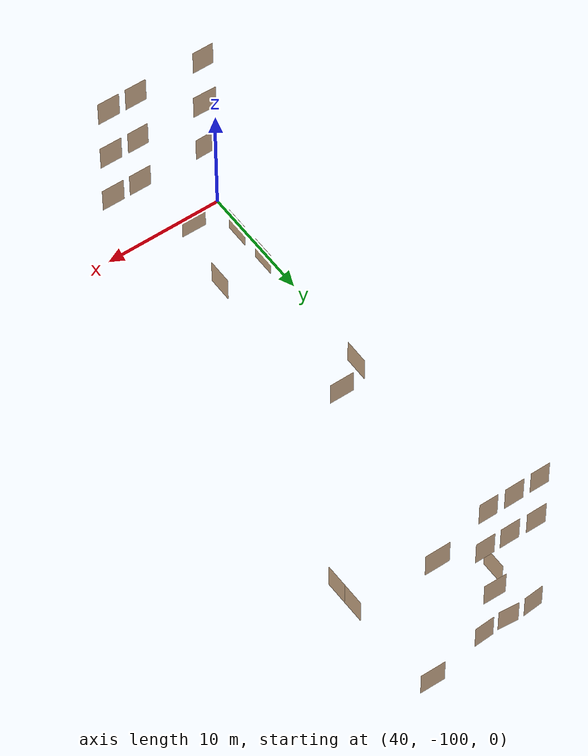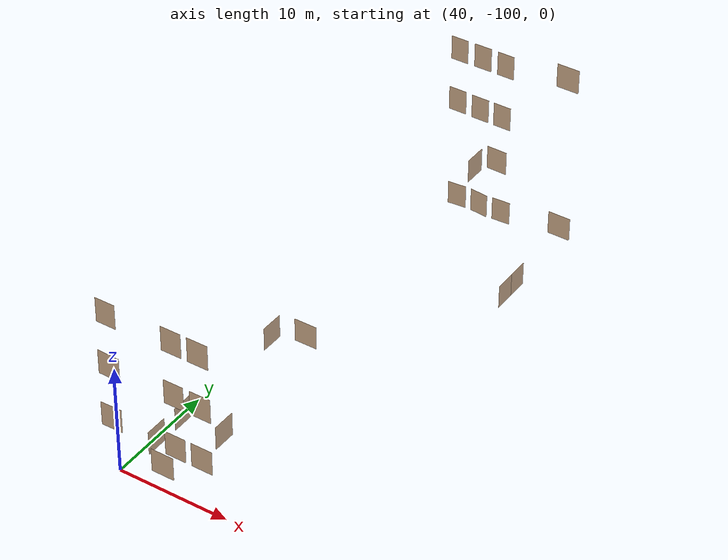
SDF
<sdf version="1.7">
 <world name="sim_world">
  <model name="puerta25">
   <pose>53.52785036692322 -64.84820118131377 0.0 0 0 -1.5655381820930956</pose>
   <link name="right">
    <pose>0.9582287468332203 0 1.11 0 0 0</pose>
    <visual name="right_visual">
     <geometry><box><size>1.9064574936664407 0.03 2.2</size></box></geometry>
     <material>
      <ambient>0.5 0.25 0 0.6</ambient>
      <diffuse>0.5 0.25 0 0.6</diffuse>
      <pbr><metal><metalness>0.0</metalness></metal></pbr>
     </material>
    </visual>
    <collision name="right_collision">
     <geometry><box><size>1.9064574936664407 0.03 2.2</size></box></geometry>
     <surface><contact><collide_bitmask>0x02</collide_bitmask></contact></surface>
    </collision>
    <inertial>
     <mass>50.0</mass>
     <inertia><ixx>20.17041666666667</ixx><iyy>35.31075072982053</iyy><izz>15.147834063153864</izz></inertia>
    </inertial>
   </link>
   <joint name="right_joint" type="revolute">
    <parent>world</parent>
    <child>right</child>
    <axis><xyz>0 0 -1</xyz><limit><lower>0</lower><upper>1.57</upper></limit></axis>
    <pose>0.9582287468332203 0 0 0 0 0</pose>
   </joint>
   <link name="left">
    <pose>-0.9582287468332203 0 1.11 0 0 0</pose>
    <visual name="left_visual">
     <geometry><box><size>1.9064574936664407 0.03 2.2</size></box></geometry>
     <material>
      <ambient>0.5 0.25 0 0.6</ambient>
      <diffuse>0.5 0.25 0 0.6</diffuse>
      <pbr><metal><metalness>0.0</metalness></metal></pbr>
     </material>
    </visual>
    <collision name="left_collision">
     <geometry><box><size>1.9064574936664407 0.03 2.2</size></box></geometry>
     <surface><contact><collide_bitmask>0x02</collide_bitmask></contact></surface>
    </collision>
    <inertial>
     <mass>50.0</mass>
     <inertia><ixx>20.17041666666667</ixx><iyy>35.31075072982053</iyy><izz>15.147834063153864</izz></inertia>
    </inertial>
   </link>
   <joint name="left_joint" type="revolute">
    <parent>world</parent>
    <child>left</child>
    <axis><xyz>0 0 -1</xyz><limit><lower>-1.57</lower><upper>0</upper></limit></axis>
    <pose>-0.9582287468332203 0 0 0 0 0</pose>
   </joint>
   <plugin name="register_component" filename="libregister_component.so">
    <component name="Door">
     <v_max_door>0.5</v_max_door>
     <a_max_door>0.3</a_max_door>
     <a_nom_door>0.15</a_nom_door>
     <dx_min_door>0.01</dx_min_door>
     <f_max_door>500.0</f_max_door>
     <ros_interface>true</ros_interface>
     <door name="puerta25" type="DoubleSwingDoor" left_joint_name="left_joint" right_joint_name="right_joint"/>
    </component>
   </plugin>
  </model>
  <model name="puerta46">
   <pose>52.62060139609808 -55.57334884553428 0.0 0 0 -0.007364241070211859</pose>
   <link name="right">
    <pose>0 0 1.11 0 0 0</pose>
    <visual name="right_visual">
     <geometry><box><size>2.0850988724225146 0.03 2.2</size></box></geometry>
     <material>
      <ambient>0.5 0.25 0 0.6</ambient>
      <diffuse>0.5 0.25 0 0.6</diffuse>
      <pbr><metal><metalness>0.0</metalness></metal></pbr>
     </material>
    </visual>
    <collision name="right_collision">
     <geometry><box><size>2.0850988724225146 0.03 2.2</size></box></geometry>
     <surface><contact><collide_bitmask>0x02</collide_bitmask></contact></surface>
    </collision>
    <inertial>
     <mass>50.0</mass>
     <inertia><ixx>20.17041666666667</ixx><iyy>38.28182211574018</iyy><izz>18.118905449073505</izz></inertia>
    </inertial>
   </link>
   <joint name="right_joint" type="revolute">
    <parent>world</parent>
    <child>right</child>
    <axis><xyz>0 0 1</xyz><limit><lower>0</lower><upper>1.57</upper></limit></axis>
    <pose>1.0475494362112572 0 0 0 0 0</pose>
   </joint>
   <plugin name="register_component" filename="libregister_component.so">
    <component name="Door">
     <v_max_door>0.5</v_max_door>
     <a_max_door>0.3</a_max_door>
     <a_nom_door>0.15</a_nom_door>
     <dx_min_door>0.01</dx_min_door>
     <f_max_door>500.0</f_max_door>
     <ros_interface>true</ros_interface>
     <door name="puerta46" type="SwingDoor" left_joint_name="empty_joint" right_joint_name="right_joint"/>
    </component>
   </plugin>
  </model>
  <model name="puerta47">
   <pose>47.40019688562735 -56.50902094147127 0.0 0 0 0.05648651307854879</pose>
   <link name="right">
    <pose>0 0 1.11 0 0 0</pose>
    <visual name="right_visual">
     <geometry><box><size>1.6721889847579603 0.03 2.2</size></box></geometry>
     <material>
      <ambient>0.5 0.25 0 0.6</ambient>
      <diffuse>0.5 0.25 0 0.6</diffuse>
      <pbr><metal><metalness>0.0</metalness></metal></pbr>
     </material>
    </visual>
    <collision name="right_collision">
     <geometry><box><size>1.6721889847579603 0.03 2.2</size></box></geometry>
     <surface><contact><collide_bitmask>0x02</collide_bitmask></contact></surface>
    </collision>
    <inertial>
     <mass>50.0</mass>
     <inertia><ixx>20.17041666666667</ixx><iyy>31.817566669774415</iyy><izz>11.654650003107742</izz></inertia>
    </inertial>
   </link>
   <joint name="right_joint" type="revolute">
    <parent>world</parent>
    <child>right</child>
    <axis><xyz>0 0 -1</xyz><limit><lower>0</lower><upper>1.57</upper></limit></axis>
    <pose>0.8410944923789802 0 0 0 0 0</pose>
   </joint>
   <plugin name="register_component" filename="libregister_component.so">
    <component name="Door">
     <v_max_door>0.5</v_max_door>
     <a_max_door>0.3</a_max_door>
     <a_nom_door>0.15</a_nom_door>
     <dx_min_door>0.01</dx_min_door>
     <f_max_door>500.0</f_max_door>
     <ros_interface>true</ros_interface>
     <door name="puerta47" type="SwingDoor" left_joint_name="empty_joint" right_joint_name="right_joint"/>
    </component>
   </plugin>
  </model>
  <model name="puerta48">
   <pose>45.219545373187756 -56.56219795954895 0.0 0 0 -0.09481233352136133</pose>
   <link name="right">
    <pose>0 0 1.11 0 0 0</pose>
    <visual name="right_visual">
     <geometry><box><size>1.6945952115587586 0.03 2.2</size></box></geometry>
     <material>
      <ambient>0.5 0.25 0 0.6</ambient>
      <diffuse>0.5 0.25 0 0.6</diffuse>
      <pbr><metal><metalness>0.0</metalness></metal></pbr>
     </material>
    </visual>
    <collision name="right_collision">
     <geometry><box><size>1.6945952115587586 0.03 2.2</size></box></geometry>
     <surface><contact><collide_bitmask>0x02</collide_bitmask></contact></surface>
    </collision>
    <inertial>
     <mass>50.0</mass>
     <inertia><ixx>20.17041666666667</ixx><iyy>32.13188721265781</iyy><izz>11.96897054599114</izz></inertia>
    </inertial>
   </link>
   <joint name="right_joint" type="revolute">
    <parent>world</parent>
    <child>right</child>
    <axis><xyz>0 0 -1</xyz><limit><lower>0</lower><upper>1.57</upper></limit></axis>
    <pose>0.8522976057793793 0 0 0 0 0</pose>
   </joint>
   <plugin name="register_component" filename="libregister_component.so">
    <component name="Door">
     <v_max_door>0.5</v_max_door>
     <a_max_door>0.3</a_max_door>
     <a_nom_door>0.15</a_nom_door>
     <dx_min_door>0.01</dx_min_door>
     <f_max_door>500.0</f_max_door>
     <ros_interface>true</ros_interface>
     <door name="puerta48" type="SwingDoor" left_joint_name="empty_joint" right_joint_name="right_joint"/>
    </component>
   </plugin>
  </model>
  <model name="puerta49">
   <pose>43.012189010202256 -56.57220332915697 0.0 0 0 0.08355014081584271</pose>
   <link name="right">
    <pose>0 0 1.11 0 0 0</pose>
    <visual name="right_visual">
     <geometry><box><size>1.683934697909115 0.03 2.2</size></box></geometry>
     <material>
      <ambient>0.5 0.25 0 0.6</ambient>
      <diffuse>0.5 0.25 0 0.6</diffuse>
      <pbr><metal><metalness>0.0</metalness></metal></pbr>
     </material>
    </visual>
    <collision name="right_collision">
     <geometry><box><size>1.683934697909115 0.03 2.2</size></box></geometry>
     <surface><contact><collide_bitmask>0x02</collide_bitmask></contact></surface>
    </collision>
    <inertial>
     <mass>50.0</mass>
     <inertia><ixx>20.17041666666667</ixx><iyy>31.981816945092767</iyy><izz>11.818900278426096</izz></inertia>
    </inertial>
   </link>
   <joint name="right_joint" type="revolute">
    <parent>world</parent>
    <child>right</child>
    <axis><xyz>0 0 -1</xyz><limit><lower>0</lower><upper>1.57</upper></limit></axis>
    <pose>0.8469673489545575 0 0 0 0 0</pose>
   </joint>
   <plugin name="register_component" filename="libregister_component.so">
    <component name="Door">
     <v_max_door>0.5</v_max_door>
     <a_max_door>0.3</a_max_door>
     <a_nom_door>0.15</a_nom_door>
     <dx_min_door>0.01</dx_min_door>
     <f_max_door>500.0</f_max_door>
     <ros_interface>true</ros_interface>
     <door name="puerta49" type="SwingDoor" left_joint_name="empty_joint" right_joint_name="right_joint"/>
    </component>
   </plugin>
  </model>
  <model name="puerta52">
   <pose>43.07785931626991 -79.60778593162699 0.0 0 0 3.1404094859948395</pose>
   <link name="right">
    <pose>0 0 1.11 0 0 0</pose>
    <visual name="right_visual">
     <geometry><box><size>2.0776334640875898 0.03 2.2</size></box></geometry>
     <material>
      <ambient>0.5 0.25 0 0.6</ambient>
      <diffuse>0.5 0.25 0 0.6</diffuse>
      <pbr><metal><metalness>0.0</metalness></metal></pbr>
     </material>
    </visual>
    <collision name="right_collision">
     <geometry><box><size>2.0776334640875898 0.03 2.2</size></box></geometry>
     <surface><contact><collide_bitmask>0x02</collide_bitmask></contact></surface>
    </collision>
    <inertial>
     <mass>50.0</mass>
     <inertia><ixx>20.17041666666667</ixx><iyy>38.152336712902496</iyy><izz>17.989420046235825</izz></inertia>
    </inertial>
   </link>
   <joint name="right_joint" type="revolute">
    <parent>world</parent>
    <child>right</child>
    <axis><xyz>0 0 1</xyz><limit><lower>0</lower><upper>1.57</upper></limit></axis>
    <pose>1.0438167320437948 0 0 0 0 0</pose>
   </joint>
   <plugin name="register_component" filename="libregister_component.so">
    <component name="Door">
     <v_max_door>0.5</v_max_door>
     <a_max_door>0.3</a_max_door>
     <a_nom_door>0.15</a_nom_door>
     <dx_min_door>0.01</dx_min_door>
     <f_max_door>500.0</f_max_door>
     <ros_interface>true</ros_interface>
     <door name="puerta52" type="SwingDoor" left_joint_name="empty_joint" right_joint_name="right_joint"/>
    </component>
   </plugin>
  </model>
  <model name="puerta53">
   <pose>40.75546805083229 -81.01752282083407 0.0 0 0 -1.5821649831274933</pose>
   <link name="right">
    <pose>0 0 1.11 0 0 0</pose>
    <visual name="right_visual">
     <geometry><box><size>2.1312158720166674 0.03 2.2</size></box></geometry>
     <material>
      <ambient>0.5 0.25 0 0.6</ambient>
      <diffuse>0.5 0.25 0 0.6</diffuse>
      <pbr><metal><metalness>0.0</metalness></metal></pbr>
     </material>
    </visual>
    <collision name="right_collision">
     <geometry><box><size>2.1312158720166674 0.03 2.2</size></box></geometry>
     <surface><contact><collide_bitmask>0x02</collide_bitmask></contact></surface>
    </collision>
    <inertial>
     <mass>50.0</mass>
     <inertia><ixx>20.17041666666667</ixx><iyy>39.092004554732355</iyy><izz>18.929087888065684</izz></inertia>
    </inertial>
   </link>
   <joint name="right_joint" type="revolute">
    <parent>world</parent>
    <child>right</child>
    <axis><xyz>0 0 1</xyz><limit><lower>0</lower><upper>1.57</upper></limit></axis>
    <pose>1.0706079360083336 0 0 0 0 0</pose>
   </joint>
   <plugin name="register_component" filename="libregister_component.so">
    <component name="Door">
     <v_max_door>0.5</v_max_door>
     <a_max_door>0.3</a_max_door>
     <a_nom_door>0.15</a_nom_door>
     <dx_min_door>0.01</dx_min_door>
     <f_max_door>500.0</f_max_door>
     <ros_interface>true</ros_interface>
     <door name="puerta53" type="SwingDoor" left_joint_name="empty_joint" right_joint_name="right_joint"/>
    </component>
   </plugin>
  </model>
  <model name="puerta54">
   <pose>40.715482369787004 -92.9995883300519 0.0 0 0 -1.5707963267948966</pose>
   <link name="right">
    <pose>0 0 1.11 0 0 0</pose>
    <visual name="right_visual">
     <geometry><box><size>1.9820887775192284 0.03 2.2</size></box></geometry>
     <material>
      <ambient>0.5 0.25 0 0.6</ambient>
      <diffuse>0.5 0.25 0 0.6</diffuse>
      <pbr><metal><metalness>0.0</metalness></metal></pbr>
     </material>
    </visual>
    <collision name="right_collision">
     <geometry><box><size>1.9820887775192284 0.03 2.2</size></box></geometry>
     <surface><contact><collide_bitmask>0x02</collide_bitmask></contact></surface>
    </collision>
    <inertial>
     <mass>50.0</mass>
     <inertia><ixx>20.17041666666667</ixx><iyy>36.53614967486529</iyy><izz>16.373233008198625</izz></inertia>
    </inertial>
   </link>
   <joint name="right_joint" type="revolute">
    <parent>world</parent>
    <child>right</child>
    <axis><xyz>0 0 1</xyz><limit><lower>0</lower><upper>1.57</upper></limit></axis>
    <pose>0.9960443887596142 0 0 0 0 0</pose>
   </joint>
   <plugin name="register_component" filename="libregister_component.so">
    <component name="Door">
     <v_max_door>0.5</v_max_door>
     <a_max_door>0.3</a_max_door>
     <a_nom_door>0.15</a_nom_door>
     <dx_min_door>0.01</dx_min_door>
     <f_max_door>500.0</f_max_door>
     <ros_interface>true</ros_interface>
     <door name="puerta54" type="SwingDoor" left_joint_name="empty_joint" right_joint_name="right_joint"/>
    </component>
   </plugin>
  </model>
  <model name="puerta55">
   <pose>44.68093789153392 -92.97095042061929 0.0 0 0 -1.5774400818094219</pose>
   <link name="right">
    <pose>0 0 1.11 0 0 0</pose>
    <visual name="right_visual">
     <geometry><box><size>2.1344897838593595 0.03 2.2</size></box></geometry>
     <material>
      <ambient>0.5 0.25 0 0.6</ambient>
      <diffuse>0.5 0.25 0 0.6</diffuse>
      <pbr><metal><metalness>0.0</metalness></metal></pbr>
     </material>
    </visual>
    <collision name="right_collision">
     <geometry><box><size>2.1344897838593595 0.03 2.2</size></box></geometry>
     <surface><contact><collide_bitmask>0x02</collide_bitmask></contact></surface>
    </collision>
    <inertial>
     <mass>50.0</mass>
     <inertia><ixx>20.17041666666667</ixx><iyy>39.15019432249991</iyy><izz>18.98727765583323</izz></inertia>
    </inertial>
   </link>
   <joint name="right_joint" type="revolute">
    <parent>world</parent>
    <child>right</child>
    <axis><xyz>0 0 -1</xyz><limit><lower>0</lower><upper>1.57</upper></limit></axis>
    <pose>1.0722448919296796 0 0 0 0 0</pose>
   </joint>
   <plugin name="register_component" filename="libregister_component.so">
    <component name="Door">
     <v_max_door>0.5</v_max_door>
     <a_max_door>0.3</a_max_door>
     <a_nom_door>0.15</a_nom_door>
     <dx_min_door>0.01</dx_min_door>
     <f_max_door>500.0</f_max_door>
     <ros_interface>true</ros_interface>
     <door name="puerta55" type="SwingDoor" left_joint_name="empty_joint" right_joint_name="right_joint"/>
    </component>
   </plugin>
  </model>
  <model name="puerta56">
   <pose>40.727474494361914 -96.3662788616431 0.0 0 0 1.5707963267948966</pose>
   <link name="right">
    <pose>0 0 1.11 0 0 0</pose>
    <visual name="right_visual">
     <geometry><box><size>2.031524968677294 0.03 2.2</size></box></geometry>
     <material>
      <ambient>0.5 0.25 0 0.6</ambient>
      <diffuse>0.5 0.25 0 0.6</diffuse>
      <pbr><metal><metalness>0.0</metalness></metal></pbr>
     </material>
    </visual>
    <collision name="right_collision">
     <geometry><box><size>2.031524968677294 0.03 2.2</size></box></geometry>
     <surface><contact><collide_bitmask>0x02</collide_bitmask></contact></surface>
    </collision>
    <inertial>
     <mass>50.0</mass>
     <inertia><ixx>20.17041666666667</ixx><iyy>37.36289040983034</iyy><izz>17.19997374316367</izz></inertia>
    </inertial>
   </link>
   <joint name="right_joint" type="revolute">
    <parent>world</parent>
    <child>right</child>
    <axis><xyz>0 0 -1</xyz><limit><lower>0</lower><upper>1.57</upper></limit></axis>
    <pose>1.020762484338647 0 0 0 0 0</pose>
   </joint>
   <plugin name="register_component" filename="libregister_component.so">
    <component name="Door">
     <v_max_door>0.5</v_max_door>
     <a_max_door>0.3</a_max_door>
     <a_nom_door>0.15</a_nom_door>
     <dx_min_door>0.01</dx_min_door>
     <f_max_door>500.0</f_max_door>
     <ros_interface>true</ros_interface>
     <door name="puerta56" type="SwingDoor" left_joint_name="empty_joint" right_joint_name="right_joint"/>
    </component>
   </plugin>
  </model>
  <model name="puerta57">
   <pose>43.063558260247 -98.71405047431537 0.0 0 0 3.1377158472483493</pose>
   <link name="right">
    <pose>0 0 1.11 0 0 0</pose>
    <visual name="right_visual">
     <geometry><box><size>2.0952959354385654 0.03 2.2</size></box></geometry>
     <material>
      <ambient>0.5 0.25 0 0.6</ambient>
      <diffuse>0.5 0.25 0 0.6</diffuse>
      <pbr><metal><metalness>0.0</metalness></metal></pbr>
     </material>
    </visual>
    <collision name="right_collision">
     <geometry><box><size>2.0952959354385654 0.03 2.2</size></box></geometry>
     <surface><contact><collide_bitmask>0x02</collide_bitmask></contact></surface>
    </collision>
    <inertial>
     <mass>50.0</mass>
     <inertia><ixx>20.17041666666667</ixx><iyy>38.4594377377724</iyy><izz>18.296521071105722</izz></inertia>
    </inertial>
   </link>
   <joint name="right_joint" type="revolute">
    <parent>world</parent>
    <child>right</child>
    <axis><xyz>0 0 -1</xyz><limit><lower>0</lower><upper>1.57</upper></limit></axis>
    <pose>1.0526479677192826 0 0 0 0 0</pose>
   </joint>
   <plugin name="register_component" filename="libregister_component.so">
    <component name="Door">
     <v_max_door>0.5</v_max_door>
     <a_max_door>0.3</a_max_door>
     <a_nom_door>0.15</a_nom_door>
     <dx_min_door>0.01</dx_min_door>
     <f_max_door>500.0</f_max_door>
     <ros_interface>true</ros_interface>
     <door name="puerta57" type="SwingDoor" left_joint_name="empty_joint" right_joint_name="right_joint"/>
    </component>
   </plugin>
  </model>
  <model name="puerta3158">
   <pose>46.75317372883407 -56.415233009408134 5.0 0 0 -0.016442522791668225</pose>
   <link name="right">
    <pose>0 0 1.11 0 0 0</pose>
    <visual name="right_visual">
     <geometry><box><size>1.8698343282020928 0.03 2.2</size></box></geometry>
     <material>
      <ambient>0.5 0.25 0 0.6</ambient>
      <diffuse>0.5 0.25 0 0.6</diffuse>
      <pbr><metal><metalness>0.0</metalness></metal></pbr>
     </material>
    </visual>
    <collision name="right_collision">
     <geometry><box><size>1.8698343282020928 0.03 2.2</size></box></geometry>
     <surface><contact><collide_bitmask>0x02</collide_bitmask></contact></surface>
    </collision>
    <inertial>
     <mass>50.0</mass>
     <inertia><ixx>20.17041666666667</ixx><iyy>34.73450172884572</iyy><izz>14.571585062179052</izz></inertia>
    </inertial>
   </link>
   <joint name="right_joint" type="revolute">
    <parent>world</parent>
    <child>right</child>
    <axis><xyz>0 0 -1</xyz><limit><lower>0</lower><upper>1.57</upper></limit></axis>
    <pose>0.9399171641010464 0 0 0 0 0</pose>
   </joint>
   <plugin name="register_component" filename="libregister_component.so">
    <component name="Door">
     <v_max_door>0.5</v_max_door>
     <a_max_door>0.3</a_max_door>
     <a_nom_door>0.15</a_nom_door>
     <dx_min_door>0.01</dx_min_door>
     <f_max_door>500.0</f_max_door>
     <ros_interface>true</ros_interface>
     <door name="puerta3158" type="SwingDoor" left_joint_name="empty_joint" right_joint_name="right_joint"/>
    </component>
   </plugin>
  </model>
  <model name="puerta3159">
   <pose>45.63348467686153 -58.08294049451392 5.0 0 0 -1.5707850723177155</pose>
   <link name="right">
    <pose>0 0 1.11 0 0 0</pose>
    <visual name="right_visual">
     <geometry><box><size>2.1005448932218327 0.03 2.2</size></box></geometry>
     <material>
      <ambient>0.5 0.25 0 0.6</ambient>
      <diffuse>0.5 0.25 0 0.6</diffuse>
      <pbr><metal><metalness>0.0</metalness></metal></pbr>
     </material>
    </visual>
    <collision name="right_collision">
     <geometry><box><size>2.1005448932218327 0.03 2.2</size></box></geometry>
     <surface><contact><collide_bitmask>0x02</collide_bitmask></contact></surface>
    </collision>
    <inertial>
     <mass>50.0</mass>
     <inertia><ixx>20.17041666666667</ixx><iyy>38.551203535168014</iyy><izz>18.388286868501336</izz></inertia>
    </inertial>
   </link>
   <joint name="right_joint" type="revolute">
    <parent>world</parent>
    <child>right</child>
    <axis><xyz>0 0 1</xyz><limit><lower>0</lower><upper>1.57</upper></limit></axis>
    <pose>1.0552724466109162 0 0 0 0 0</pose>
   </joint>
   <plugin name="register_component" filename="libregister_component.so">
    <component name="Door">
     <v_max_door>0.5</v_max_door>
     <a_max_door>0.3</a_max_door>
     <a_nom_door>0.15</a_nom_door>
     <dx_min_door>0.01</dx_min_door>
     <f_max_door>500.0</f_max_door>
     <ros_interface>true</ros_interface>
     <door name="puerta3159" type="SwingDoor" left_joint_name="empty_joint" right_joint_name="right_joint"/>
    </component>
   </plugin>
  </model>
  <model name="puerta3164">
   <pose>40.25053476153667 -100.94872343696868 5.0 0 0 0.020657232711416125</pose>
   <link name="right">
    <pose>0 0 1.11 0 0 0</pose>
    <visual name="right_visual">
     <geometry><box><size>1.8991258555410617 0.03 2.2</size></box></geometry>
     <material>
      <ambient>0.5 0.25 0 0.6</ambient>
      <diffuse>0.5 0.25 0 0.6</diffuse>
      <pbr><metal><metalness>0.0</metalness></metal></pbr>
     </material>
    </visual>
    <collision name="right_collision">
     <geometry><box><size>1.8991258555410617 0.03 2.2</size></box></geometry>
     <surface><contact><collide_bitmask>0x02</collide_bitmask></contact></surface>
    </collision>
    <inertial>
     <mass>50.0</mass>
     <inertia><ixx>20.17041666666667</ixx><iyy>35.19449589660238</iyy><izz>15.031579229935708</izz></inertia>
    </inertial>
   </link>
   <joint name="right_joint" type="revolute">
    <parent>world</parent>
    <child>right</child>
    <axis><xyz>0 0 1</xyz><limit><lower>0</lower><upper>1.57</upper></limit></axis>
    <pose>0.9545629277705309 0 0 0 0 0</pose>
   </joint>
   <plugin name="register_component" filename="libregister_component.so">
    <component name="Door">
     <v_max_door>0.5</v_max_door>
     <a_max_door>0.3</a_max_door>
     <a_nom_door>0.15</a_nom_door>
     <dx_min_door>0.01</dx_min_door>
     <f_max_door>500.0</f_max_door>
     <ros_interface>true</ros_interface>
     <door name="puerta3164" type="SwingDoor" left_joint_name="empty_joint" right_joint_name="right_joint"/>
    </component>
   </plugin>
  </model>
  <model name="puerta3165">
   <pose>46.24683741554928 -100.98443548326364 5.0 0 0 1.1254477172847506e-05</pose>
   <link name="right">
    <pose>0 0 1.11 0 0 0</pose>
    <visual name="right_visual">
     <geometry><box><size>1.8747705005770636 0.03 2.2</size></box></geometry>
     <material>
      <ambient>0.5 0.25 0 0.6</ambient>
      <diffuse>0.5 0.25 0 0.6</diffuse>
      <pbr><metal><metalness>0.0</metalness></metal></pbr>
     </material>
    </visual>
    <collision name="right_collision">
     <geometry><box><size>1.8747705005770636 0.03 2.2</size></box></geometry>
     <surface><contact><collide_bitmask>0x02</collide_bitmask></contact></surface>
    </collision>
    <inertial>
     <mass>50.0</mass>
     <inertia><ixx>20.17041666666667</ixx><iyy>34.81151845764156</iyy><izz>14.648601790974892</izz></inertia>
    </inertial>
   </link>
   <joint name="right_joint" type="revolute">
    <parent>world</parent>
    <child>right</child>
    <axis><xyz>0 0 1</xyz><limit><lower>0</lower><upper>1.57</upper></limit></axis>
    <pose>0.9423852502885318 0 0 0 0 0</pose>
   </joint>
   <plugin name="register_component" filename="libregister_component.so">
    <component name="Door">
     <v_max_door>0.5</v_max_door>
     <a_max_door>0.3</a_max_door>
     <a_nom_door>0.15</a_nom_door>
     <dx_min_door>0.01</dx_min_door>
     <f_max_door>500.0</f_max_door>
     <ros_interface>true</ros_interface>
     <door name="puerta3165" type="SwingDoor" left_joint_name="empty_joint" right_joint_name="right_joint"/>
    </component>
   </plugin>
  </model>
  <model name="puerta3166">
   <pose>48.66744175080785 -100.98440824062737 5.0 0 0 -3.141581399112612</pose>
   <link name="right">
    <pose>0 0 1.11 0 0 0</pose>
    <visual name="right_visual">
     <geometry><box><size>1.901511180980686 0.03 2.2</size></box></geometry>
     <material>
      <ambient>0.5 0.25 0 0.6</ambient>
      <diffuse>0.5 0.25 0 0.6</diffuse>
      <pbr><metal><metalness>0.0</metalness></metal></pbr>
     </material>
    </visual>
    <collision name="right_collision">
     <geometry><box><size>1.901511180980686 0.03 2.2</size></box></geometry>
     <surface><contact><collide_bitmask>0x02</collide_bitmask></contact></surface>
    </collision>
    <inertial>
     <mass>50.0</mass>
     <inertia><ixx>20.17041666666667</ixx><iyy>35.232269880810684</iyy><izz>15.069353214144014</izz></inertia>
    </inertial>
   </link>
   <joint name="right_joint" type="revolute">
    <parent>world</parent>
    <child>right</child>
    <axis><xyz>0 0 -1</xyz><limit><lower>0</lower><upper>1.57</upper></limit></axis>
    <pose>0.955755590490343 0 0 0 0 0</pose>
   </joint>
   <plugin name="register_component" filename="libregister_component.so">
    <component name="Door">
     <v_max_door>0.5</v_max_door>
     <a_max_door>0.3</a_max_door>
     <a_nom_door>0.15</a_nom_door>
     <dx_min_door>0.01</dx_min_door>
     <f_max_door>500.0</f_max_door>
     <ros_interface>true</ros_interface>
     <door name="puerta3166" type="SwingDoor" left_joint_name="empty_joint" right_joint_name="right_joint"/>
    </component>
   </plugin>
  </model>
  <model name="puerta5255">
   <pose>43.0228554374838 -56.89698671437752 10.0 0 0 -4.690877071458797e-06</pose>
   <link name="right">
    <pose>0 0 1.11 0 0 0</pose>
    <visual name="right_visual">
     <geometry><box><size>1.6507101948174436 0.03 2.2</size></box></geometry>
     <material>
      <ambient>0.5 0.25 0 0.6</ambient>
      <diffuse>0.5 0.25 0 0.6</diffuse>
      <pbr><metal><metalness>0.0</metalness></metal></pbr>
     </material>
    </visual>
    <collision name="right_collision">
     <geometry><box><size>1.6507101948174436 0.03 2.2</size></box></geometry>
     <surface><contact><collide_bitmask>0x02</collide_bitmask></contact></surface>
    </collision>
    <inertial>
     <mass>50.0</mass>
     <inertia><ixx>20.17041666666667</ixx><iyy>31.520183946976015</iyy><izz>11.357267280309346</izz></inertia>
    </inertial>
   </link>
   <joint name="right_joint" type="revolute">
    <parent>world</parent>
    <child>right</child>
    <axis><xyz>0 0 -1</xyz><limit><lower>0</lower><upper>1.57</upper></limit></axis>
    <pose>0.8303550974087218 0 0 0 0 0</pose>
   </joint>
   <plugin name="register_component" filename="libregister_component.so">
    <component name="Door">
     <v_max_door>0.5</v_max_door>
     <a_max_door>0.3</a_max_door>
     <a_nom_door>0.15</a_nom_door>
     <dx_min_door>0.01</dx_min_door>
     <f_max_door>500.0</f_max_door>
     <ros_interface>true</ros_interface>
     <door name="puerta5255" type="SwingDoor" left_joint_name="empty_joint" right_joint_name="right_joint"/>
    </component>
   </plugin>
  </model>
  <model name="puerta5256">
   <pose>45.272305416396534 -56.942192745080504 10.0 0 0 -4.690877074076604e-06</pose>
   <link name="right">
    <pose>0 0 1.11 0 0 0</pose>
    <visual name="right_visual">
     <geometry><box><size>1.6255538831762395 0.03 2.2</size></box></geometry>
     <material>
      <ambient>0.5 0.25 0 0.6</ambient>
      <diffuse>0.5 0.25 0 0.6</diffuse>
      <pbr><metal><metalness>0.0</metalness></metal></pbr>
     </material>
    </visual>
    <collision name="right_collision">
     <geometry><box><size>1.6255538831762395 0.03 2.2</size></box></geometry>
     <surface><contact><collide_bitmask>0x02</collide_bitmask></contact></surface>
    </collision>
    <inertial>
     <mass>50.0</mass>
     <inertia><ixx>20.17041666666667</ixx><iyy>31.176772612955634</iyy><izz>11.013855946288965</izz></inertia>
    </inertial>
   </link>
   <joint name="right_joint" type="revolute">
    <parent>world</parent>
    <child>right</child>
    <axis><xyz>0 0 -1</xyz><limit><lower>0</lower><upper>1.57</upper></limit></axis>
    <pose>0.8177769415881198 0 0 0 0 0</pose>
   </joint>
   <plugin name="register_component" filename="libregister_component.so">
    <component name="Door">
     <v_max_door>0.5</v_max_door>
     <a_max_door>0.3</a_max_door>
     <a_nom_door>0.15</a_nom_door>
     <dx_min_door>0.01</dx_min_door>
     <f_max_door>500.0</f_max_door>
     <ros_interface>true</ros_interface>
     <door name="puerta5256" type="SwingDoor" left_joint_name="empty_joint" right_joint_name="right_joint"/>
    </component>
   </plugin>
  </model>
  <model name="puerta5257">
   <pose>47.40619044594392 -56.942202754872866 10.0 0 0 -4.690877063613603e-06</pose>
   <link name="right">
    <pose>0 0 1.11 0 0 0</pose>
    <visual name="right_visual">
     <geometry><box><size>1.605514716008288 0.03 2.2</size></box></geometry>
     <material>
      <ambient>0.5 0.25 0 0.6</ambient>
      <diffuse>0.5 0.25 0 0.6</diffuse>
      <pbr><metal><metalness>0.0</metalness></metal></pbr>
     </material>
    </visual>
    <collision name="right_collision">
     <geometry><box><size>1.605514716008288 0.03 2.2</size></box></geometry>
     <surface><contact><collide_bitmask>0x02</collide_bitmask></contact></surface>
    </collision>
    <inertial>
     <mass>50.0</mass>
     <inertia><ixx>20.17041666666667</ixx><iyy>30.90698959716323</iyy><izz>10.744072930496559</izz></inertia>
    </inertial>
   </link>
   <joint name="right_joint" type="revolute">
    <parent>world</parent>
    <child>right</child>
    <axis><xyz>0 0 -1</xyz><limit><lower>0</lower><upper>1.57</upper></limit></axis>
    <pose>0.807757358004144 0 0 0 0 0</pose>
   </joint>
   <plugin name="register_component" filename="libregister_component.so">
    <component name="Door">
     <v_max_door>0.5</v_max_door>
     <a_max_door>0.3</a_max_door>
     <a_nom_door>0.15</a_nom_door>
     <dx_min_door>0.01</dx_min_door>
     <f_max_door>500.0</f_max_door>
     <ros_interface>true</ros_interface>
     <door name="puerta5257" type="SwingDoor" left_joint_name="empty_joint" right_joint_name="right_joint"/>
    </component>
   </plugin>
  </model>
  <model name="puerta5260">
   <pose>40.2959444498598 -100.93139770039988 10.0 0 0 -0.021398915982656586</pose>
   <link name="right">
    <pose>0 0 1.11 0 0 0</pose>
    <visual name="right_visual">
     <geometry><box><size>1.9805595401228913 0.03 2.2</size></box></geometry>
     <material>
      <ambient>0.5 0.25 0 0.6</ambient>
      <diffuse>0.5 0.25 0 0.6</diffuse>
      <pbr><metal><metalness>0.0</metalness></metal></pbr>
     </material>
    </visual>
    <collision name="right_collision">
     <geometry><box><size>1.9805595401228913 0.03 2.2</size></box></geometry>
     <surface><contact><collide_bitmask>0x02</collide_bitmask></contact></surface>
    </collision>
    <inertial>
     <mass>50.0</mass>
     <inertia><ixx>20.17041666666667</ixx><iyy>36.51090038321584</iyy><izz>16.347983716549162</izz></inertia>
    </inertial>
   </link>
   <joint name="right_joint" type="revolute">
    <parent>world</parent>
    <child>right</child>
    <axis><xyz>0 0 1</xyz><limit><lower>0</lower><upper>1.57</upper></limit></axis>
    <pose>0.9952797700614456 0 0 0 0 0</pose>
   </joint>
   <plugin name="register_component" filename="libregister_component.so">
    <component name="Door">
     <v_max_door>0.5</v_max_door>
     <a_max_door>0.3</a_max_door>
     <a_nom_door>0.15</a_nom_door>
     <dx_min_door>0.01</dx_min_door>
     <f_max_door>500.0</f_max_door>
     <ros_interface>true</ros_interface>
     <door name="puerta5260" type="SwingDoor" left_joint_name="empty_joint" right_joint_name="right_joint"/>
    </component>
   </plugin>
  </model>
  <model name="puerta5261">
   <pose>46.281214217583724 -100.94305565036755 10.0 0 0 -4.690877081141781e-06</pose>
   <link name="right">
    <pose>0 0 1.11 0 0 0</pose>
    <visual name="right_visual">
     <geometry><box><size>1.7763486161151132 0.03 2.2</size></box></geometry>
     <material>
      <ambient>0.5 0.25 0 0.6</ambient>
      <diffuse>0.5 0.25 0 0.6</diffuse>
      <pbr><metal><metalness>0.0</metalness></metal></pbr>
     </material>
    </visual>
    <collision name="right_collision">
     <geometry><box><size>1.7763486161151132 0.03 2.2</size></box></geometry>
     <surface><contact><collide_bitmask>0x02</collide_bitmask></contact></surface>
    </collision>
    <inertial>
     <mass>50.0</mass>
     <inertia><ixx>20.17041666666667</ixx><iyy>33.314226691558666</iyy><izz>13.151310024891993</izz></inertia>
    </inertial>
   </link>
   <joint name="right_joint" type="revolute">
    <parent>world</parent>
    <child>right</child>
    <axis><xyz>0 0 1</xyz><limit><lower>0</lower><upper>1.57</upper></limit></axis>
    <pose>0.8931743080575566 0 0 0 0 0</pose>
   </joint>
   <plugin name="register_component" filename="libregister_component.so">
    <component name="Door">
     <v_max_door>0.5</v_max_door>
     <a_max_door>0.3</a_max_door>
     <a_nom_door>0.15</a_nom_door>
     <dx_min_door>0.01</dx_min_door>
     <f_max_door>500.0</f_max_door>
     <ros_interface>true</ros_interface>
     <door name="puerta5261" type="SwingDoor" left_joint_name="empty_joint" right_joint_name="right_joint"/>
    </component>
   </plugin>
  </model>
  <model name="puerta5262">
   <pose>48.68423241903924 -100.94306692263054 10.0 0 0 3.1415879627127272</pose>
   <link name="right">
    <pose>0 0 1.11 0 0 0</pose>
    <visual name="right_visual">
     <geometry><box><size>1.869745448808639 0.03 2.2</size></box></geometry>
     <material>
      <ambient>0.5 0.25 0 0.6</ambient>
      <diffuse>0.5 0.25 0 0.6</diffuse>
      <pbr><metal><metalness>0.0</metalness></metal></pbr>
     </material>
    </visual>
    <collision name="right_collision">
     <geometry><box><size>1.869745448808639 0.03 2.2</size></box></geometry>
     <surface><contact><collide_bitmask>0x02</collide_bitmask></contact></surface>
    </collision>
    <inertial>
     <mass>50.0</mass>
     <inertia><ixx>20.17041666666667</ixx><iyy>34.73311684725258</iyy><izz>14.570200180585912</izz></inertia>
    </inertial>
   </link>
   <joint name="right_joint" type="revolute">
    <parent>world</parent>
    <child>right</child>
    <axis><xyz>0 0 -1</xyz><limit><lower>0</lower><upper>1.57</upper></limit></axis>
    <pose>0.9398727244043195 0 0 0 0 0</pose>
   </joint>
   <plugin name="register_component" filename="libregister_component.so">
    <component name="Door">
     <v_max_door>0.5</v_max_door>
     <a_max_door>0.3</a_max_door>
     <a_nom_door>0.15</a_nom_door>
     <dx_min_door>0.01</dx_min_door>
     <f_max_door>500.0</f_max_door>
     <ros_interface>true</ros_interface>
     <door name="puerta5262" type="SwingDoor" left_joint_name="empty_joint" right_joint_name="right_joint"/>
    </component>
   </plugin>
  </model>
  <model name="puerta7190">
   <pose>52.67481890033305 -55.546977254822195 15.0 0 0 -3.9980903211063416e-05</pose>
   <link name="right">
    <pose>0 0 1.11 0 0 0</pose>
    <visual name="right_visual">
     <geometry><box><size>2.042383977304482 0.03 2.2</size></box></geometry>
     <material>
      <ambient>0.5 0.25 0 0.6</ambient>
      <diffuse>0.5 0.25 0 0.6</diffuse>
      <pbr><metal><metalness>0.0</metalness></metal></pbr>
     </material>
    </visual>
    <collision name="right_collision">
     <geometry><box><size>2.042383977304482 0.03 2.2</size></box></geometry>
     <surface><contact><collide_bitmask>0x02</collide_bitmask></contact></surface>
    </collision>
    <inertial>
     <mass>50.0</mass>
     <inertia><ixx>20.17041666666667</ixx><iyy>37.54721796145864</iyy><izz>17.384301294791975</izz></inertia>
    </inertial>
   </link>
   <joint name="right_joint" type="revolute">
    <parent>world</parent>
    <child>right</child>
    <axis><xyz>0 0 1</xyz><limit><lower>0</lower><upper>1.57</upper></limit></axis>
    <pose>1.0261919886522408 0 0 0 0 0</pose>
   </joint>
   <plugin name="register_component" filename="libregister_component.so">
    <component name="Door">
     <v_max_door>0.5</v_max_door>
     <a_max_door>0.3</a_max_door>
     <a_nom_door>0.15</a_nom_door>
     <dx_min_door>0.01</dx_min_door>
     <f_max_door>500.0</f_max_door>
     <ros_interface>true</ros_interface>
     <door name="puerta7190" type="SwingDoor" left_joint_name="empty_joint" right_joint_name="right_joint"/>
    </component>
   </plugin>
  </model>
  <model name="puerta7193">
   <pose>43.05069029418106 -56.81656528297439 15.0 0 0 -3.9980903208514484e-05</pose>
   <link name="right">
    <pose>0 0 1.11 0 0 0</pose>
    <visual name="right_visual">
     <geometry><box><size>1.5847803111739411 0.03 2.2</size></box></geometry>
     <material>
      <ambient>0.5 0.25 0 0.6</ambient>
      <diffuse>0.5 0.25 0 0.6</diffuse>
      <pbr><metal><metalness>0.0</metalness></metal></pbr>
     </material>
    </visual>
    <collision name="right_collision">
     <geometry><box><size>1.5847803111739411 0.03 2.2</size></box></geometry>
     <surface><contact><collide_bitmask>0x02</collide_bitmask></contact></surface>
    </collision>
    <inertial>
     <mass>50.0</mass>
     <inertia><ixx>20.17041666666667</ixx><iyy>30.63136931118573</iyy><izz>10.468452644519058</izz></inertia>
    </inertial>
   </link>
   <joint name="right_joint" type="revolute">
    <parent>world</parent>
    <child>right</child>
    <axis><xyz>0 0 -1</xyz><limit><lower>0</lower><upper>1.57</upper></limit></axis>
    <pose>0.7973901555869706 0 0 0 0 0</pose>
   </joint>
   <plugin name="register_component" filename="libregister_component.so">
    <component name="Door">
     <v_max_door>0.5</v_max_door>
     <a_max_door>0.3</a_max_door>
     <a_nom_door>0.15</a_nom_door>
     <dx_min_door>0.01</dx_min_door>
     <f_max_door>500.0</f_max_door>
     <ros_interface>true</ros_interface>
     <door name="puerta7193" type="SwingDoor" left_joint_name="empty_joint" right_joint_name="right_joint"/>
    </component>
   </plugin>
  </model>
  <model name="puerta7194">
   <pose>45.27371385465916 -56.77236541456905 15.0 0 0 0.00496269623168539</pose>
   <link name="right">
    <pose>0 0 1.11 0 0 0</pose>
    <visual name="right_visual">
     <geometry><box><size>1.6009182093331926 0.03 2.2</size></box></geometry>
     <material>
      <ambient>0.5 0.25 0 0.6</ambient>
      <diffuse>0.5 0.25 0 0.6</diffuse>
      <pbr><metal><metalness>0.0</metalness></metal></pbr>
     </material>
    </visual>
    <collision name="right_collision">
     <geometry><box><size>1.6009182093331926 0.03 2.2</size></box></geometry>
     <surface><contact><collide_bitmask>0x02</collide_bitmask></contact></surface>
    </collision>
    <inertial>
     <mass>50.0</mass>
     <inertia><ixx>20.17041666666667</ixx><iyy>30.845579637394156</iyy><izz>10.682662970727485</izz></inertia>
    </inertial>
   </link>
   <joint name="right_joint" type="revolute">
    <parent>world</parent>
    <child>right</child>
    <axis><xyz>0 0 -1</xyz><limit><lower>0</lower><upper>1.57</upper></limit></axis>
    <pose>0.8054591046665963 0 0 0 0 0</pose>
   </joint>
   <plugin name="register_component" filename="libregister_component.so">
    <component name="Door">
     <v_max_door>0.5</v_max_door>
     <a_max_door>0.3</a_max_door>
     <a_nom_door>0.15</a_nom_door>
     <dx_min_door>0.01</dx_min_door>
     <f_max_door>500.0</f_max_door>
     <ros_interface>true</ros_interface>
     <door name="puerta7194" type="SwingDoor" left_joint_name="empty_joint" right_joint_name="right_joint"/>
    </component>
   </plugin>
  </model>
  <model name="puerta7195">
   <pose>47.47257671460368 -56.768423892050386 15.0 0 0 -3.998090321184639e-05</pose>
   <link name="right">
    <pose>0 0 1.11 0 0 0</pose>
    <visual name="right_visual">
     <geometry><box><size>1.5525798694301445 0.03 2.2</size></box></geometry>
     <material>
      <ambient>0.5 0.25 0 0.6</ambient>
      <diffuse>0.5 0.25 0 0.6</diffuse>
      <pbr><metal><metalness>0.0</metalness></metal></pbr>
     </material>
    </visual>
    <collision name="right_collision">
     <geometry><box><size>1.5525798694301445 0.03 2.2</size></box></geometry>
     <surface><contact><collide_bitmask>0x02</collide_bitmask></contact></surface>
    </collision>
    <inertial>
     <mass>50.0</mass>
     <inertia><ixx>20.17041666666667</ixx><iyy>30.21043437899886</iyy><izz>10.047517712332187</izz></inertia>
    </inertial>
   </link>
   <joint name="right_joint" type="revolute">
    <parent>world</parent>
    <child>right</child>
    <axis><xyz>0 0 -1</xyz><limit><lower>0</lower><upper>1.57</upper></limit></axis>
    <pose>0.7812899347150722 0 0 0 0 0</pose>
   </joint>
   <plugin name="register_component" filename="libregister_component.so">
    <component name="Door">
     <v_max_door>0.5</v_max_door>
     <a_max_door>0.3</a_max_door>
     <a_nom_door>0.15</a_nom_door>
     <dx_min_door>0.01</dx_min_door>
     <f_max_door>500.0</f_max_door>
     <ros_interface>true</ros_interface>
     <door name="puerta7195" type="SwingDoor" left_joint_name="empty_joint" right_joint_name="right_joint"/>
    </component>
   </plugin>
  </model>
  <model name="puerta7197">
   <pose>40.3226272648576 -100.95762066951923 15.0 0 0 -3.9980903216171235e-05</pose>
   <link name="right">
    <pose>0 0 1.11 0 0 0</pose>
    <visual name="right_visual">
     <geometry><box><size>1.7626010313586655 0.03 2.2</size></box></geometry>
     <material>
      <ambient>0.5 0.25 0 0.6</ambient>
      <diffuse>0.5 0.25 0 0.6</diffuse>
      <pbr><metal><metalness>0.0</metalness></metal></pbr>
     </material>
    </visual>
    <collision name="right_collision">
     <geometry><box><size>1.7626010313586655 0.03 2.2</size></box></geometry>
     <surface><contact><collide_bitmask>0x02</collide_bitmask></contact></surface>
    </collision>
    <inertial>
     <mass>50.0</mass>
     <inertia><ixx>20.17041666666667</ixx><iyy>33.11150998227763</iyy><izz>12.948593315610966</izz></inertia>
    </inertial>
   </link>
   <joint name="right_joint" type="revolute">
    <parent>world</parent>
    <child>right</child>
    <axis><xyz>0 0 1</xyz><limit><lower>0</lower><upper>1.57</upper></limit></axis>
    <pose>0.8863005156793328 0 0 0 0 0</pose>
   </joint>
   <plugin name="register_component" filename="libregister_component.so">
    <component name="Door">
     <v_max_door>0.5</v_max_door>
     <a_max_door>0.3</a_max_door>
     <a_nom_door>0.15</a_nom_door>
     <dx_min_door>0.01</dx_min_door>
     <f_max_door>500.0</f_max_door>
     <ros_interface>true</ros_interface>
     <door name="puerta7197" type="SwingDoor" left_joint_name="empty_joint" right_joint_name="right_joint"/>
    </component>
   </plugin>
  </model>
  <model name="puerta7198">
   <pose>46.28389609127899 -100.95785900643133 15.0 0 0 -3.998090321366937e-05</pose>
   <link name="right">
    <pose>0 0 1.11 0 0 0</pose>
    <visual name="right_visual">
     <geometry><box><size>1.7961329385935023 0.03 2.2</size></box></geometry>
     <material>
      <ambient>0.5 0.25 0 0.6</ambient>
      <diffuse>0.5 0.25 0 0.6</diffuse>
      <pbr><metal><metalness>0.0</metalness></metal></pbr>
     </material>
    </visual>
    <collision name="right_collision">
     <geometry><box><size>1.7961329385935023 0.03 2.2</size></box></geometry>
     <surface><contact><collide_bitmask>0x02</collide_bitmask></contact></surface>
    </collision>
    <inertial>
     <mass>50.0</mass>
     <inertia><ixx>20.17041666666667</ixx><iyy>33.608723054585546</iyy><izz>13.445806387918877</izz></inertia>
    </inertial>
   </link>
   <joint name="right_joint" type="revolute">
    <parent>world</parent>
    <child>right</child>
    <axis><xyz>0 0 1</xyz><limit><lower>0</lower><upper>1.57</upper></limit></axis>
    <pose>0.9030664692967512 0 0 0 0 0</pose>
   </joint>
   <plugin name="register_component" filename="libregister_component.so">
    <component name="Door">
     <v_max_door>0.5</v_max_door>
     <a_max_door>0.3</a_max_door>
     <a_nom_door>0.15</a_nom_door>
     <dx_min_door>0.01</dx_min_door>
     <f_max_door>500.0</f_max_door>
     <ros_interface>true</ros_interface>
     <door name="puerta7198" type="SwingDoor" left_joint_name="empty_joint" right_joint_name="right_joint"/>
    </component>
   </plugin>
  </model>
  <model name="puerta7199">
   <pose>48.65625224732325 -100.95795385537326 15.0 0 0 3.1415526726865832</pose>
   <link name="right">
    <pose>0 0 1.11 0 0 0</pose>
    <visual name="right_visual">
     <geometry><box><size>1.8403516083222011 0.03 2.2</size></box></geometry>
     <material>
      <ambient>0.5 0.25 0 0.6</ambient>
      <diffuse>0.5 0.25 0 0.6</diffuse>
      <pbr><metal><metalness>0.0</metalness></metal></pbr>
     </material>
    </visual>
    <collision name="right_collision">
     <geometry><box><size>1.8403516083222011 0.03 2.2</size></box></geometry>
     <surface><contact><collide_bitmask>0x02</collide_bitmask></contact></surface>
    </collision>
    <inertial>
     <mass>50.0</mass>
     <inertia><ixx>20.17041666666667</ixx><iyy>34.278725176058806</iyy><izz>14.115808509392137</izz></inertia>
    </inertial>
   </link>
   <joint name="right_joint" type="revolute">
    <parent>world</parent>
    <child>right</child>
    <axis><xyz>0 0 -1</xyz><limit><lower>0</lower><upper>1.57</upper></limit></axis>
    <pose>0.9251758041611006 0 0 0 0 0</pose>
   </joint>
   <plugin name="register_component" filename="libregister_component.so">
    <component name="Door">
     <v_max_door>0.5</v_max_door>
     <a_max_door>0.3</a_max_door>
     <a_nom_door>0.15</a_nom_door>
     <dx_min_door>0.01</dx_min_door>
     <f_max_door>500.0</f_max_door>
     <ros_interface>true</ros_interface>
     <door name="puerta7199" type="SwingDoor" left_joint_name="empty_joint" right_joint_name="right_joint"/>
    </component>
   </plugin>
  </model>
 </world>
</sdf>
